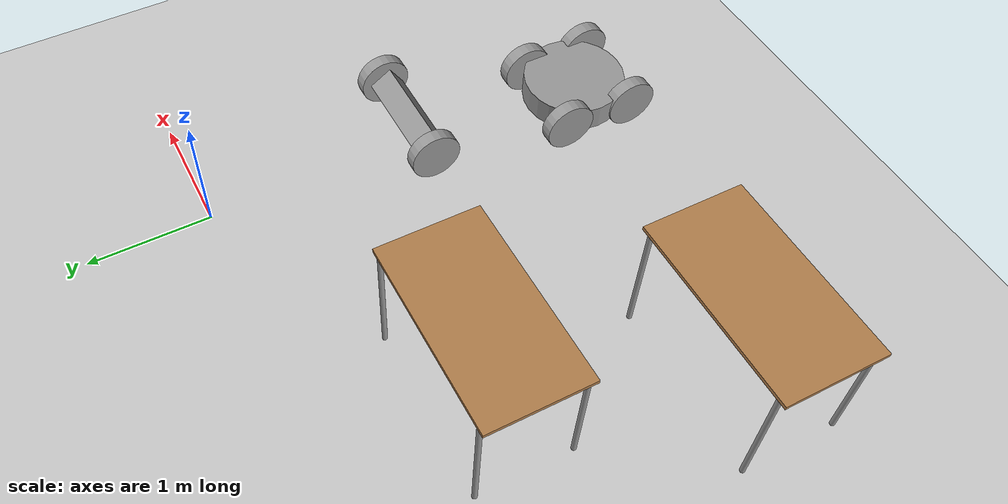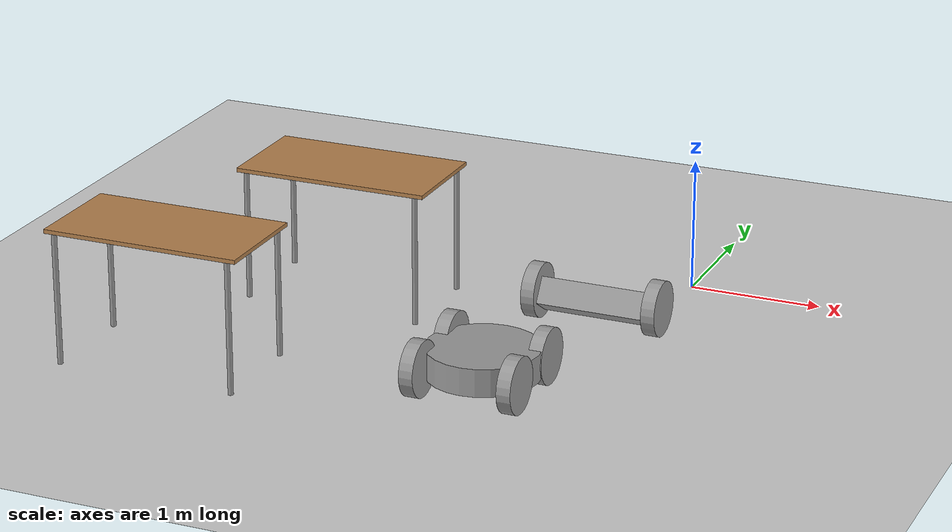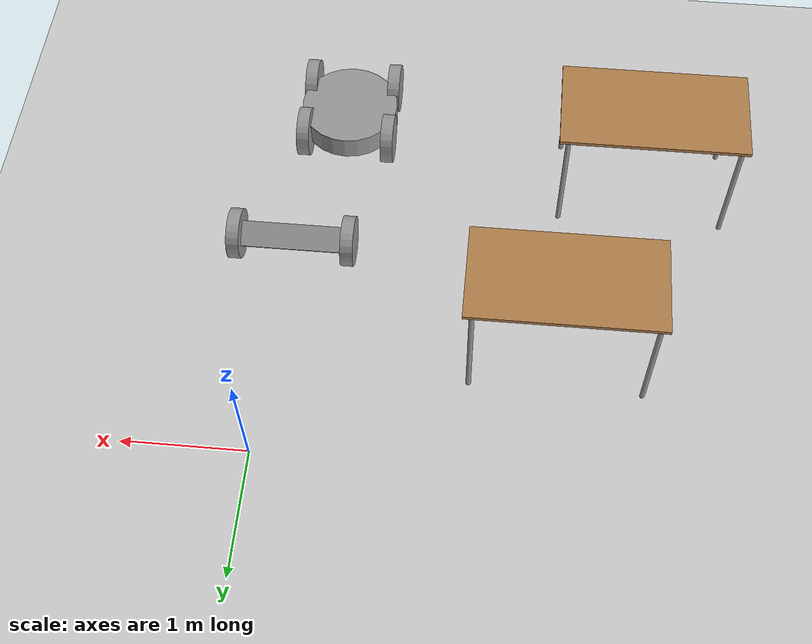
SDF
<sdf version="1.7">
 <world name="default">
  <model name="ground_plane">
   <static>1</static>
   <link name="link">
    <collision name="collision_collision">
     <geometry><plane><normal>0 0 1</normal><size>100 100</size></plane></geometry>
     <surface>
      <contact><collide_bitmask>65535</collide_bitmask></contact>
      <friction><ode><mu>100</mu><mu2>50</mu2></ode></friction>
     </surface>
    </collision>
    <visual name="visual_visual">
     <cast_shadows>0</cast_shadows>
     <geometry><plane><normal>0 0 1</normal><size>100 100</size></plane></geometry>
     <material>
      <script><uri>file://media/materials/scripts/gazebo.material</uri><name>Gazebo/Grey</name></script>
     </material>
    </visual>
   </link>
  </model>
  <model name="table_0">
   <static>1</static>
   <link name="link">
    <collision name="collision_surface">
     <pose>0 0 1 0 -0 0</pose>
     <geometry><box><size>1.5 0.8 0.03</size></box></geometry>
     <surface><friction><ode><mu>0.6</mu><mu2>0.6</mu2></ode></friction></surface>
    </collision>
    <visual name="visual_visual1">
     <pose>0 0 1 0 -0 0</pose>
     <geometry><box><size>1.5 0.8 0.03</size></box></geometry>
     <material>
      <script><uri>file://media/materials/scripts/gazebo.material</uri><name>Gazebo/Wood</name></script>
     </material>
    </visual>
    <collision name="collision_collision_front_left_leg">
     <pose>0.68 0.38 0.5 0 -0 0</pose>
     <geometry><cylinder><radius>0.02</radius><length>1</length></cylinder></geometry>
    </collision>
    <visual name="visual_visual_front_left_leg">
     <pose>0.68 0.38 0.5 0 -0 0</pose>
     <geometry><cylinder><radius>0.02</radius><length>1</length></cylinder></geometry>
     <material>
      <script><uri>file://media/materials/scripts/gazebo.material</uri><name>Gazebo/Grey</name></script>
     </material>
    </visual>
    <collision name="collision_collision_front_right_leg">
     <pose>0.68 -0.38 0.5 0 -0 0</pose>
     <geometry><cylinder><radius>0.02</radius><length>1</length></cylinder></geometry>
    </collision>
    <visual name="visual_visual_front_right_leg">
     <pose>0.68 -0.38 0.5 0 -0 0</pose>
     <geometry><cylinder><radius>0.02</radius><length>1</length></cylinder></geometry>
     <material>
      <script><uri>file://media/materials/scripts/gazebo.material</uri><name>Gazebo/Grey</name></script>
     </material>
    </visual>
    <collision name="collision_back_right_leg">
     <pose>-0.68 -0.38 0.5 0 -0 0</pose>
     <geometry><cylinder><radius>0.02</radius><length>1</length></cylinder></geometry>
    </collision>
    <visual name="visual_back_right_leg">
     <pose>-0.68 -0.38 0.5 0 -0 0</pose>
     <geometry><cylinder><radius>0.02</radius><length>1</length></cylinder></geometry>
     <material>
      <script><uri>file://media/materials/scripts/gazebo.material</uri><name>Gazebo/Grey</name></script>
     </material>
    </visual>
    <collision name="collision_back_left_leg">
     <pose>-0.68 0.38 0.5 0 -0 0</pose>
     <geometry><cylinder><radius>0.02</radius><length>1</length></cylinder></geometry>
    </collision>
    <visual name="visual_back_left_leg">
     <pose>-0.68 0.38 0.5 0 -0 0</pose>
     <geometry><cylinder><radius>0.02</radius><length>1</length></cylinder></geometry>
     <material>
      <script><uri>file://media/materials/scripts/gazebo.material</uri><name>Gazebo/Grey</name></script>
     </material>
    </visual>
   </link>
   <pose>-2.29771 -1.11789 0 0 -0 0</pose>
  </model>
  <model name="table_1">
   <static>1</static>
   <link name="link">
    <collision name="collision_surface">
     <pose>0 0 1 0 -0 0</pose>
     <geometry><box><size>1.5 0.8 0.03</size></box></geometry>
     <surface><friction><ode><mu>0.6</mu><mu2>0.6</mu2></ode></friction></surface>
    </collision>
    <visual name="visual_visual1">
     <pose>0 0 1 0 -0 0</pose>
     <geometry><box><size>1.5 0.8 0.03</size></box></geometry>
     <material>
      <script><uri>file://media/materials/scripts/gazebo.material</uri><name>Gazebo/Wood</name></script>
     </material>
    </visual>
    <collision name="collision_collision_front_left_leg">
     <pose>0.68 0.38 0.5 0 -0 0</pose>
     <geometry><cylinder><radius>0.02</radius><length>1</length></cylinder></geometry>
    </collision>
    <visual name="visual_visual_front_left_leg">
     <pose>0.68 0.38 0.5 0 -0 0</pose>
     <geometry><cylinder><radius>0.02</radius><length>1</length></cylinder></geometry>
     <material>
      <script><uri>file://media/materials/scripts/gazebo.material</uri><name>Gazebo/Grey</name></script>
     </material>
    </visual>
    <collision name="collision_collision_front_right_leg">
     <pose>0.68 -0.38 0.5 0 -0 0</pose>
     <geometry><cylinder><radius>0.02</radius><length>1</length></cylinder></geometry>
    </collision>
    <visual name="visual_visual_front_right_leg">
     <pose>0.68 -0.38 0.5 0 -0 0</pose>
     <geometry><cylinder><radius>0.02</radius><length>1</length></cylinder></geometry>
     <material>
      <script><uri>file://media/materials/scripts/gazebo.material</uri><name>Gazebo/Grey</name></script>
     </material>
    </visual>
    <collision name="collision_back_right_leg">
     <pose>-0.68 -0.38 0.5 0 -0 0</pose>
     <geometry><cylinder><radius>0.02</radius><length>1</length></cylinder></geometry>
    </collision>
    <visual name="visual_back_right_leg">
     <pose>-0.68 -0.38 0.5 0 -0 0</pose>
     <geometry><cylinder><radius>0.02</radius><length>1</length></cylinder></geometry>
     <material>
      <script><uri>file://media/materials/scripts/gazebo.material</uri><name>Gazebo/Grey</name></script>
     </material>
    </visual>
    <collision name="collision_back_left_leg">
     <pose>-0.68 0.38 0.5 0 -0 0</pose>
     <geometry><cylinder><radius>0.02</radius><length>1</length></cylinder></geometry>
    </collision>
    <visual name="visual_back_left_leg">
     <pose>-0.68 0.38 0.5 0 -0 0</pose>
     <geometry><cylinder><radius>0.02</radius><length>1</length></cylinder></geometry>
     <material>
      <script><uri>file://media/materials/scripts/gazebo.material</uri><name>Gazebo/Grey</name></script>
     </material>
    </visual>
   </link>
   <pose>-2.94647 -2.79257 0 0 -0 0</pose>
  </model>
  <model name="robot">
   <link name="link_1">
    <inertial>
     <mass>1</mass>
     <inertia>
      <ixx>0.166667</ixx>
      <ixy>0</ixy>
      <ixz>0</ixz>
      <iyy>0.166667</iyy>
      <iyz>0</iyz>
      <izz>0.166667</izz>
     </inertia>
    </inertial>
    <pose>2.6e-05 -0.013333 0 0 -0 0</pose>
    <visual name="visual_visual">
     <geometry><box><size>0.8 0.2 0.2</size></box></geometry>
     <material>
      <lighting>1</lighting>
      <script><uri>file://media/materials/scripts/gazebo.material</uri><name>Gazebo/Grey</name></script>
      <shader type="pixel"><normal_map>__default__</normal_map></shader>
      <ambient>0.3 0.3 0.3 1</ambient>
      <diffuse>0.7 0.7 0.7 1</diffuse>
      <specular>0.01 0.01 0.01 1</specular>
      <emissive>0 0 0 1</emissive>
     </material>
    </visual>
    <collision name="collision_collision">
     <geometry><box><size>0.8 0.2 0.2</size></box></geometry>
     <surface>
      <friction>
       <ode><mu>1</mu><mu2>1</mu2><fdir1>0 0 0</fdir1><slip1>0</slip1><slip2>0</slip2></ode>
       <torsional>
        <coefficient>1</coefficient>
        <patch_radius>0</patch_radius>
        <surface_radius>0</surface_radius>
        <use_patch_radius>1</use_patch_radius>
        <ode><slip>0</slip></ode>
       </torsional>
      </friction>
      <bounce><restitution_coefficient>0</restitution_coefficient><threshold>1e+06</threshold></bounce>
      <contact>
       <collide_without_contact>0</collide_without_contact>
       <collide_without_contact_bitmask>1</collide_without_contact_bitmask>
       <collide_bitmask>1</collide_bitmask>
       <ode>
        <soft_cfm>0</soft_cfm>
        <soft_erp>0.2</soft_erp>
        <kp>1e+13</kp>
        <kd>1</kd>
        <max_vel>0.01</max_vel>
        <min_depth>0</min_depth>
       </ode>
       <bullet>
        <split_impulse>1</split_impulse>
        <split_impulse_penetration_threshold>-0.01</split_impulse_penetration_threshold>
        <soft_cfm>0</soft_cfm>
        <soft_erp>0.2</soft_erp>
        <kp>1e+13</kp>
        <kd>1</kd>
       </bullet>
      </contact>
     </surface>
    </collision>
   </link>
   <link name="link_4_clone">
    <inertial>
     <mass>1</mass>
     <inertia><ixx>0.145833</ixx><ixy>0</ixy><ixz>0</ixz><iyy>0.145833</iyy><iyz>0</iyz><izz>0.125</izz></inertia>
    </inertial>
    <pose>0.450106 0.006667 0 0 -0 0</pose>
    <visual name="visual_visual">
     <pose>0 0 0 0 1.57 0</pose>
     <geometry><cylinder><radius>0.2</radius><length>0.1</length></cylinder></geometry>
     <material>
      <lighting>1</lighting>
      <script><uri>file://media/materials/scripts/gazebo.material</uri><name>Gazebo/Grey</name></script>
      <shader type="pixel"><normal_map>__default__</normal_map></shader>
      <ambient>0.3 0.3 0.3 1</ambient>
      <diffuse>0.7 0.7 0.7 1</diffuse>
      <specular>0.01 0.01 0.01 1</specular>
      <emissive>0 0 0 1</emissive>
     </material>
    </visual>
    <collision name="collision_collision">
     <geometry><cylinder><radius>0.2</radius><length>1</length></cylinder></geometry>
     <surface>
      <friction>
       <ode><mu>1</mu><mu2>1</mu2><fdir1>0 0 0</fdir1><slip1>0</slip1><slip2>0</slip2></ode>
       <torsional>
        <coefficient>1</coefficient>
        <patch_radius>0</patch_radius>
        <surface_radius>0</surface_radius>
        <use_patch_radius>1</use_patch_radius>
        <ode><slip>0</slip></ode>
       </torsional>
      </friction>
      <bounce><restitution_coefficient>0</restitution_coefficient><threshold>1e+06</threshold></bounce>
      <contact>
       <collide_without_contact>0</collide_without_contact>
       <collide_without_contact_bitmask>1</collide_without_contact_bitmask>
       <collide_bitmask>1</collide_bitmask>
       <ode>
        <soft_cfm>0</soft_cfm>
        <soft_erp>0.2</soft_erp>
        <kp>1e+13</kp>
        <kd>1</kd>
        <max_vel>0.01</max_vel>
        <min_depth>0</min_depth>
       </ode>
       <bullet>
        <split_impulse>1</split_impulse>
        <split_impulse_penetration_threshold>-0.01</split_impulse_penetration_threshold>
        <soft_cfm>0</soft_cfm>
        <soft_erp>0.2</soft_erp>
        <kp>1e+13</kp>
        <kd>1</kd>
       </bullet>
      </contact>
     </surface>
    </collision>
   </link>
   <link name="link_4_clone_clone">
    <inertial>
     <mass>1</mass>
     <inertia><ixx>0.145833</ixx><ixy>0</ixy><ixz>0</ixz><iyy>0.145833</iyy><iyz>0</iyz><izz>0.125</izz></inertia>
    </inertial>
    <pose>-0.450133 0.006667 0 0 -0 0</pose>
    <visual name="visual_visual">
     <pose>0 0 0 0 1.57 0</pose>
     <geometry><cylinder><radius>0.2</radius><length>0.1</length></cylinder></geometry>
     <material>
      <lighting>1</lighting>
      <script><uri>file://media/materials/scripts/gazebo.material</uri><name>Gazebo/Grey</name></script>
      <shader type="pixel"><normal_map>__default__</normal_map></shader>
      <ambient>0.3 0.3 0.3 1</ambient>
      <diffuse>0.7 0.7 0.7 1</diffuse>
      <specular>0.01 0.01 0.01 1</specular>
      <emissive>0 0 0 1</emissive>
     </material>
    </visual>
    <collision name="collision_collision">
     <geometry><cylinder><radius>0.2</radius><length>1</length></cylinder></geometry>
     <surface>
      <friction>
       <ode><mu>1</mu><mu2>1</mu2><fdir1>0 0 0</fdir1><slip1>0</slip1><slip2>0</slip2></ode>
       <torsional>
        <coefficient>1</coefficient>
        <patch_radius>0</patch_radius>
        <surface_radius>0</surface_radius>
        <use_patch_radius>1</use_patch_radius>
        <ode><slip>0</slip></ode>
       </torsional>
      </friction>
      <bounce><restitution_coefficient>0</restitution_coefficient><threshold>1e+06</threshold></bounce>
      <contact>
       <collide_without_contact>0</collide_without_contact>
       <collide_without_contact_bitmask>1</collide_without_contact_bitmask>
       <collide_bitmask>1</collide_bitmask>
       <ode>
        <soft_cfm>0</soft_cfm>
        <soft_erp>0.2</soft_erp>
        <kp>1e+13</kp>
        <kd>1</kd>
        <max_vel>0.01</max_vel>
        <min_depth>0</min_depth>
       </ode>
       <bullet>
        <split_impulse>1</split_impulse>
        <split_impulse_penetration_threshold>-0.01</split_impulse_penetration_threshold>
        <soft_cfm>0</soft_cfm>
        <soft_erp>0.2</soft_erp>
        <kp>1e+13</kp>
        <kd>1</kd>
       </bullet>
      </contact>
     </surface>
    </collision>
   </link>
   <joint name="link_1_JOINT_0" type="revolute">
    <parent>link_1</parent>
    <child>link_4_clone</child>
    <axis>
     <xyz>1 0 0</xyz>
     <limit>
      <lower>-1.79769e+308</lower>
      <upper>1.79769e+308</upper>
      <effort>-1</effort>
      <velocity>-1</velocity>
     </limit>
     <dynamics>
      <spring_reference>0</spring_reference>
      <spring_stiffness>0</spring_stiffness>
      <damping>0</damping>
     </dynamics>
    </axis>
    <physics>
     <ode><limit><cfm>0</cfm><erp>0.2</erp></limit><suspension><cfm>0</cfm><erp>0.2</erp></suspension></ode>
    </physics>
   </joint>
   <joint name="link_1_JOINT_4" type="revolute">
    <parent>link_1</parent>
    <child>link_4_clone_clone</child>
    <axis>
     <xyz>1 0 0</xyz>
     <limit>
      <lower>-1.79769e+308</lower>
      <upper>1.79769e+308</upper>
      <effort>-1</effort>
      <velocity>-1</velocity>
     </limit>
     <dynamics>
      <spring_reference>0</spring_reference>
      <spring_stiffness>0</spring_stiffness>
      <damping>0</damping>
     </dynamics>
    </axis>
    <physics>
     <ode><limit><cfm>0</cfm><erp>0.2</erp></limit><suspension><cfm>0</cfm><erp>0.2</erp></suspension></ode>
    </physics>
   </joint>
   <static>0</static>
   <pose>-0.14011 -1.66294 0.494395 0.998338 1e-06 -0.000826</pose>
  </model>
  <model name="robot2">
   <link name="link_0">
    <inertial>
     <mass>1</mass>
     <inertia><ixx>0.145833</ixx><ixy>0</ixy><ixz>0</ixz><iyy>0.145833</iyy><iyz>0</iyz><izz>0.125</izz></inertia>
    </inertial>
    <pose>-0 0.020098 0 0 -0 0</pose>
    <visual name="visual">
     <geometry><cylinder><radius>0.4</radius><length>0.2</length></cylinder></geometry>
     <material>
      <lighting>1</lighting>
      <script><uri>file://media/materials/scripts/gazebo.material</uri><name>Gazebo/Grey</name></script>
      <shader type="pixel"><normal_map>__default__</normal_map></shader>
      <ambient>0.3 0.3 0.3 1</ambient>
      <diffuse>0.7 0.7 0.7 1</diffuse>
      <specular>0.01 0.01 0.01 1</specular>
      <emissive>0 0 0 1</emissive>
     </material>
    </visual>
    <collision name="collision">
     <geometry><cylinder><radius>0.4</radius><length>0.2</length></cylinder></geometry>
     <surface>
      <friction>
       <ode><mu>1</mu><mu2>1</mu2><fdir1>0 0 0</fdir1><slip1>0</slip1><slip2>0</slip2></ode>
       <torsional>
        <coefficient>1</coefficient>
        <patch_radius>0</patch_radius>
        <surface_radius>0</surface_radius>
        <use_patch_radius>1</use_patch_radius>
        <ode><slip>0</slip></ode>
       </torsional>
      </friction>
      <bounce><restitution_coefficient>0</restitution_coefficient><threshold>1e+06</threshold></bounce>
      <contact>
       <collide_without_contact>0</collide_without_contact>
       <collide_without_contact_bitmask>1</collide_without_contact_bitmask>
       <collide_bitmask>1</collide_bitmask>
       <ode>
        <soft_cfm>0</soft_cfm>
        <soft_erp>0.2</soft_erp>
        <kp>1e+13</kp>
        <kd>1</kd>
        <max_vel>0.01</max_vel>
        <min_depth>0</min_depth>
       </ode>
       <bullet>
        <split_impulse>1</split_impulse>
        <split_impulse_penetration_threshold>-0.01</split_impulse_penetration_threshold>
        <soft_cfm>0</soft_cfm>
        <soft_erp>0.2</soft_erp>
        <kp>1e+13</kp>
        <kd>1</kd>
       </bullet>
      </contact>
     </surface>
    </collision>
   </link>
   <link name="link_1">
    <inertial>
     <mass>1</mass>
     <inertia><ixx>0.145833</ixx><ixy>0</ixy><ixz>0</ixz><iyy>0.145833</iyy><iyz>0</iyz><izz>0.125</izz></inertia>
    </inertial>
    <pose>-0.34992 0.280098 0 0 -0 0</pose>
    <visual name="visual">
     <pose>0 0 0 0 1.57 0</pose>
     <geometry><cylinder><radius>0.2</radius><length>0.1</length></cylinder></geometry>
     <material>
      <lighting>1</lighting>
      <script><uri>file://media/materials/scripts/gazebo.material</uri><name>Gazebo/Grey</name></script>
      <shader type="pixel"><normal_map>__default__</normal_map></shader>
      <ambient>0.3 0.3 0.3 1</ambient>
      <diffuse>0.7 0.7 0.7 1</diffuse>
      <specular>0.01 0.01 0.01 1</specular>
      <emissive>0 0 0 1</emissive>
     </material>
    </visual>
    <collision name="collision">
     <pose>0 0 0 0 1.57 0</pose>
     <geometry><cylinder><radius>0.2</radius><length>0.1</length></cylinder></geometry>
     <surface>
      <friction>
       <ode><mu>1</mu><mu2>1</mu2><fdir1>0 0 0</fdir1><slip1>0</slip1><slip2>0</slip2></ode>
       <torsional>
        <coefficient>1</coefficient>
        <patch_radius>0</patch_radius>
        <surface_radius>0</surface_radius>
        <use_patch_radius>1</use_patch_radius>
        <ode><slip>0</slip></ode>
       </torsional>
      </friction>
      <bounce><restitution_coefficient>0</restitution_coefficient><threshold>1e+06</threshold></bounce>
      <contact>
       <collide_without_contact>0</collide_without_contact>
       <collide_without_contact_bitmask>1</collide_without_contact_bitmask>
       <collide_bitmask>1</collide_bitmask>
       <ode>
        <soft_cfm>0</soft_cfm>
        <soft_erp>0.2</soft_erp>
        <kp>1e+13</kp>
        <kd>1</kd>
        <max_vel>0.01</max_vel>
        <min_depth>0</min_depth>
       </ode>
       <bullet>
        <split_impulse>1</split_impulse>
        <split_impulse_penetration_threshold>-0.01</split_impulse_penetration_threshold>
        <soft_cfm>0</soft_cfm>
        <soft_erp>0.2</soft_erp>
        <kp>1e+13</kp>
        <kd>1</kd>
       </bullet>
      </contact>
     </surface>
    </collision>
   </link>
   <link name="link_1_clone">
    <inertial>
     <mass>1</mass>
     <inertia><ixx>0.145833</ixx><ixy>0</ixy><ixz>0</ixz><iyy>0.145833</iyy><iyz>0</iyz><izz>0.125</izz></inertia>
    </inertial>
    <pose>-0.34992 -0.279902 0 0 -0 0</pose>
    <visual name="visual">
     <pose>0 0 0 0 1.57 0</pose>
     <geometry><cylinder><radius>0.2</radius><length>0.1</length></cylinder></geometry>
     <material>
      <lighting>1</lighting>
      <script><uri>file://media/materials/scripts/gazebo.material</uri><name>Gazebo/Grey</name></script>
      <shader type="pixel"><normal_map>__default__</normal_map></shader>
      <ambient>0.3 0.3 0.3 1</ambient>
      <diffuse>0.7 0.7 0.7 1</diffuse>
      <specular>0.01 0.01 0.01 1</specular>
      <emissive>0 0 0 1</emissive>
     </material>
    </visual>
    <collision name="collision">
     <pose>0 0 0 0 1.57 0</pose>
     <geometry><cylinder><radius>0.2</radius><length>0.1</length></cylinder></geometry>
     <surface>
      <friction>
       <ode><mu>1</mu><mu2>1</mu2><fdir1>0 0 0</fdir1><slip1>0</slip1><slip2>0</slip2></ode>
       <torsional>
        <coefficient>1</coefficient>
        <patch_radius>0</patch_radius>
        <surface_radius>0</surface_radius>
        <use_patch_radius>1</use_patch_radius>
        <ode><slip>0</slip></ode>
       </torsional>
      </friction>
      <bounce><restitution_coefficient>0</restitution_coefficient><threshold>1e+06</threshold></bounce>
      <contact>
       <collide_without_contact>0</collide_without_contact>
       <collide_without_contact_bitmask>1</collide_without_contact_bitmask>
       <collide_bitmask>1</collide_bitmask>
       <ode>
        <soft_cfm>0</soft_cfm>
        <soft_erp>0.2</soft_erp>
        <kp>1e+13</kp>
        <kd>1</kd>
        <max_vel>0.01</max_vel>
        <min_depth>0</min_depth>
       </ode>
       <bullet>
        <split_impulse>1</split_impulse>
        <split_impulse_penetration_threshold>-0.01</split_impulse_penetration_threshold>
        <soft_cfm>0</soft_cfm>
        <soft_erp>0.2</soft_erp>
        <kp>1e+13</kp>
        <kd>1</kd>
       </bullet>
      </contact>
     </surface>
    </collision>
   </link>
   <link name="link_1_clone_0">
    <inertial>
     <mass>1</mass>
     <inertia><ixx>0.145833</ixx><ixy>0</ixy><ixz>0</ixz><iyy>0.145833</iyy><iyz>0</iyz><izz>0.125</izz></inertia>
    </inertial>
    <pose>0.34992 0.259608 0 0 -0 0</pose>
    <visual name="visual">
     <pose>0 0 0 0 1.57 0</pose>
     <geometry><cylinder><radius>0.2</radius><length>0.1</length></cylinder></geometry>
     <material>
      <lighting>1</lighting>
      <script><uri>file://media/materials/scripts/gazebo.material</uri><name>Gazebo/Grey</name></script>
      <shader type="pixel"><normal_map>__default__</normal_map></shader>
      <ambient>0.3 0.3 0.3 1</ambient>
      <diffuse>0.7 0.7 0.7 1</diffuse>
      <specular>0.01 0.01 0.01 1</specular>
      <emissive>0 0 0 1</emissive>
     </material>
    </visual>
    <collision name="collision">
     <pose>0 0 0 0 1.57 0</pose>
     <geometry><cylinder><radius>0.2</radius><length>0.1</length></cylinder></geometry>
     <surface>
      <friction>
       <ode><mu>1</mu><mu2>1</mu2><fdir1>0 0 0</fdir1><slip1>0</slip1><slip2>0</slip2></ode>
       <torsional>
        <coefficient>1</coefficient>
        <patch_radius>0</patch_radius>
        <surface_radius>0</surface_radius>
        <use_patch_radius>1</use_patch_radius>
        <ode><slip>0</slip></ode>
       </torsional>
      </friction>
      <bounce><restitution_coefficient>0</restitution_coefficient><threshold>1e+06</threshold></bounce>
      <contact>
       <collide_without_contact>0</collide_without_contact>
       <collide_without_contact_bitmask>1</collide_without_contact_bitmask>
       <collide_bitmask>1</collide_bitmask>
       <ode>
        <soft_cfm>0</soft_cfm>
        <soft_erp>0.2</soft_erp>
        <kp>1e+13</kp>
        <kd>1</kd>
        <max_vel>0.01</max_vel>
        <min_depth>0</min_depth>
       </ode>
       <bullet>
        <split_impulse>1</split_impulse>
        <split_impulse_penetration_threshold>-0.01</split_impulse_penetration_threshold>
        <soft_cfm>0</soft_cfm>
        <soft_erp>0.2</soft_erp>
        <kp>1e+13</kp>
        <kd>1</kd>
       </bullet>
      </contact>
     </surface>
    </collision>
   </link>
   <link name="link_1_clone_1">
    <inertial>
     <mass>1</mass>
     <inertia><ixx>0.145833</ixx><ixy>0</ixy><ixz>0</ixz><iyy>0.145833</iyy><iyz>0</iyz><izz>0.125</izz></inertia>
    </inertial>
    <pose>0.34992 -0.279902 0 0 -0 0</pose>
    <visual name="visual">
     <pose>0 0 0 0 1.57 0</pose>
     <geometry><cylinder><radius>0.2</radius><length>0.1</length></cylinder></geometry>
     <material>
      <lighting>1</lighting>
      <script><uri>file://media/materials/scripts/gazebo.material</uri><name>Gazebo/Grey</name></script>
      <shader type="pixel"><normal_map>__default__</normal_map></shader>
      <ambient>0.3 0.3 0.3 1</ambient>
      <diffuse>0.7 0.7 0.7 1</diffuse>
      <specular>0.01 0.01 0.01 1</specular>
      <emissive>0 0 0 1</emissive>
     </material>
    </visual>
    <collision name="collision">
     <pose>0 0 0 0 1.57 0</pose>
     <geometry><cylinder><radius>0.2</radius><length>0.1</length></cylinder></geometry>
     <surface>
      <friction>
       <ode><mu>1</mu><mu2>1</mu2><fdir1>0 0 0</fdir1><slip1>0</slip1><slip2>0</slip2></ode>
       <torsional>
        <coefficient>1</coefficient>
        <patch_radius>0</patch_radius>
        <surface_radius>0</surface_radius>
        <use_patch_radius>1</use_patch_radius>
        <ode><slip>0</slip></ode>
       </torsional>
      </friction>
      <bounce><restitution_coefficient>0</restitution_coefficient><threshold>1e+06</threshold></bounce>
      <contact>
       <collide_without_contact>0</collide_without_contact>
       <collide_without_contact_bitmask>1</collide_without_contact_bitmask>
       <collide_bitmask>1</collide_bitmask>
       <ode>
        <soft_cfm>0</soft_cfm>
        <soft_erp>0.2</soft_erp>
        <kp>1e+13</kp>
        <kd>1</kd>
        <max_vel>0.01</max_vel>
        <min_depth>0</min_depth>
       </ode>
       <bullet>
        <split_impulse>1</split_impulse>
        <split_impulse_penetration_threshold>-0.01</split_impulse_penetration_threshold>
        <soft_cfm>0</soft_cfm>
        <soft_erp>0.2</soft_erp>
        <kp>1e+13</kp>
        <kd>1</kd>
       </bullet>
      </contact>
     </surface>
    </collision>
   </link>
   <joint name="link_0_JOINT_0" type="revolute">
    <parent>link_0</parent>
    <child>link_1</child>
    <axis>
     <xyz>1 0 0</xyz>
     <limit>
      <lower>-1.79769e+308</lower>
      <upper>1.79769e+308</upper>
      <effort>-1</effort>
      <velocity>-1</velocity>
     </limit>
     <dynamics>
      <spring_reference>0</spring_reference>
      <spring_stiffness>0</spring_stiffness>
      <damping>0</damping>
     </dynamics>
    </axis>
    <physics>
     <ode><limit><cfm>0</cfm><erp>0.2</erp></limit><suspension><cfm>0</cfm><erp>0.2</erp></suspension></ode>
    </physics>
   </joint>
   <joint name="link_0_JOINT_1" type="revolute">
    <parent>link_0</parent>
    <child>link_1_clone</child>
    <axis>
     <xyz>1 0 0</xyz>
     <limit>
      <lower>-1.79769e+308</lower>
      <upper>1.79769e+308</upper>
      <effort>-1</effort>
      <velocity>-1</velocity>
     </limit>
     <dynamics>
      <spring_reference>0</spring_reference>
      <spring_stiffness>0</spring_stiffness>
      <damping>0</damping>
     </dynamics>
    </axis>
    <physics>
     <ode><limit><cfm>0</cfm><erp>0.2</erp></limit><suspension><cfm>0</cfm><erp>0.2</erp></suspension></ode>
    </physics>
   </joint>
   <joint name="link_0_JOINT_2" type="revolute">
    <parent>link_0</parent>
    <child>link_1_clone_0</child>
    <axis>
     <xyz>1 0 0</xyz>
     <limit>
      <lower>-1.79769e+308</lower>
      <upper>1.79769e+308</upper>
      <effort>-1</effort>
      <velocity>-1</velocity>
     </limit>
     <dynamics>
      <spring_reference>0</spring_reference>
      <spring_stiffness>0</spring_stiffness>
      <damping>0</damping>
     </dynamics>
    </axis>
    <physics>
     <ode><limit><cfm>0</cfm><erp>0.2</erp></limit><suspension><cfm>0</cfm><erp>0.2</erp></suspension></ode>
    </physics>
   </joint>
   <joint name="link_0_JOINT_3" type="revolute">
    <parent>link_0</parent>
    <child>link_1_clone_1</child>
    <axis>
     <xyz>1 0 0</xyz>
     <limit>
      <lower>-1.79769e+308</lower>
      <upper>1.79769e+308</upper>
      <effort>-1</effort>
      <velocity>-1</velocity>
     </limit>
     <dynamics>
      <spring_reference>0</spring_reference>
      <spring_stiffness>0</spring_stiffness>
      <damping>0</damping>
     </dynamics>
    </axis>
    <physics>
     <ode><limit><cfm>0</cfm><erp>0.2</erp></limit><suspension><cfm>0</cfm><erp>0.2</erp></suspension></ode>
    </physics>
   </joint>
   <static>0</static>
   <pose>-0.442066 -3.00846 0.5 0 -0 0</pose>
  </model>
 </world>
</sdf>
